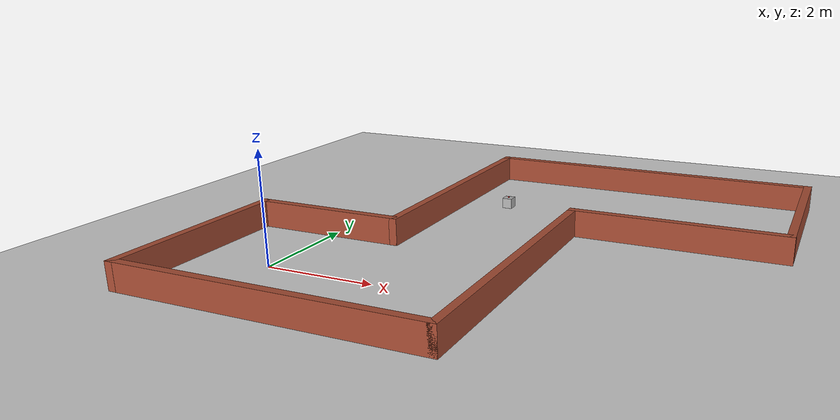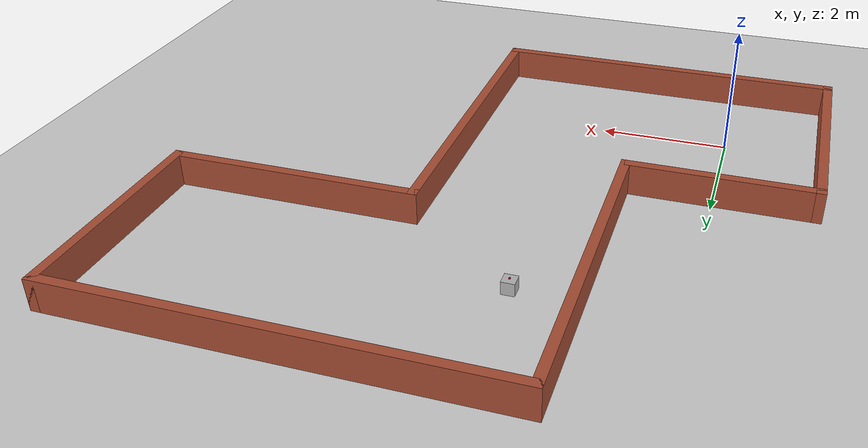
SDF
<sdf version="1.10">
 <world name="default">
  <gravity>0 0 -9.8000000000000007</gravity>
  <magnetic_field>6.0000000000000002e-06 2.3e-05 -4.1999999999999998e-05</magnetic_field>
  <atmosphere type="adiabatic"/>
  <plugin name="gz::sim::systems::Physics" filename="gz-sim-physics-system"/>
  <plugin name="gz::sim::systems::Sensors" filename="gz-sim-sensors-system"/>
  <plugin name="gz::sim::systems::UserCommands" filename="gz-sim-user-commands-system"/>
  <plugin name="gz::sim::systems::SceneBroadcaster" filename="gz-sim-scene-broadcaster-system"/>
  <plugin name="gz::sim::systems::Contact" filename="gz-sim-contact-system"/>
  <plugin name="gz::sim::systems::Imu" filename="gz-sim-imu-system"/>
  <physics type="ode">
   <max_step_size>0.001</max_step_size>
   <real_time_factor>1</real_time_factor>
   <real_time_update_rate>200</real_time_update_rate>
  </physics>
  <scene>
   <ambient>0.400000006 0.400000006 0.400000006 1</ambient>
   <background>0.699999988 0.699999988 0.699999988 1</background>
   <shadows>true</shadows>
  </scene>
  <spherical_coordinates>
   <surface_model>EARTH_WGS84</surface_model>
   <latitude_deg>0</latitude_deg>
   <longitude_deg>0</longitude_deg>
   <elevation>0</elevation>
   <heading_deg>0</heading_deg>
  </spherical_coordinates>
  <model name="ground_plane">
   <static>true</static>
   <link name="link">
    <collision name="collision">
     <geometry><plane><normal>0 0 1</normal><size>100 100</size></plane></geometry>
     <surface>
      <contact><collide_bitmask>65535</collide_bitmask></contact>
      <friction><ode><mu>100</mu><mu2>50</mu2></ode></friction>
     </surface>
    </collision>
    <visual name="visual">
     <cast_shadows>false</cast_shadows>
     <geometry><plane><normal>0 0 1</normal><size>100 100</size></plane></geometry>
     <material>
      <script><uri>file://media/materials/scripts/gazebo.material</uri><name>Gazebo/Grey</name></script>
     </material>
    </visual>
    <inertial>
     <mass>1</mass>
     <inertia><ixx>1</ixx><ixy>0</ixy><ixz>0</ixz><iyy>1</iyy><iyz>0</iyz><izz>1</izz></inertia>
    </inertial>
   </link>
  </model>
  <model name="slam_simple">
   <pose>3.2073299999999998 2.5927099999999998 0 0 0 0</pose>
   <link name="Wall_10">
    <collision name="Wall_10_Collision">
     <geometry><box><size>3.5 0.14999999999999999 0.5</size></box></geometry>
     <pose>0 0 0.25 0 0 0</pose>
    </collision>
    <visual name="Wall_10_Visual">
     <pose>0 0 0.25 0 0 0</pose>
     <geometry><box><size>3.5 0.14999999999999999 0.5</size></box></geometry>
     <material>
      <script><uri>file://media/materials/scripts/gazebo.material</uri><name>Gazebo/Bricks</name></script>
      <ambient>1 1 1 1</ambient>
     </material>
     <meta><layer>0</layer></meta>
    </visual>
    <pose>4.7249999999999996 2.6749999999999998 0 0 0 -1.5708</pose>
    <inertial>
     <mass>1</mass>
     <inertia><ixx>1</ixx><ixy>0</ixy><ixz>0</ixz><iyy>1</iyy><iyz>0</iyz><izz>1</izz></inertia>
    </inertial>
   </link>
   <link name="Wall_11">
    <collision name="Wall_11_Collision">
     <geometry><box><size>4 0.14999999999999999 0.5</size></box></geometry>
     <pose>0 0 0.25 0 0 0</pose>
    </collision>
    <visual name="Wall_11_Visual">
     <pose>0 0 0.25 0 0 0</pose>
     <geometry><box><size>4 0.14999999999999999 0.5</size></box></geometry>
     <material>
      <script><uri>file://media/materials/scripts/gazebo.material</uri><name>Gazebo/Bricks</name></script>
      <ambient>1 1 1 1</ambient>
     </material>
     <meta><layer>0</layer></meta>
    </visual>
    <pose>2.8000000000000012 0.999999999999996 0 0 0 3.1415900000000012</pose>
    <inertial>
     <mass>1</mass>
     <inertia><ixx>1</ixx><ixy>0</ixy><ixz>0</ixz><iyy>1</iyy><iyz>0</iyz><izz>1</izz></inertia>
    </inertial>
   </link>
   <link name="Wall_3">
    <collision name="Wall_3_Collision">
     <geometry><box><size>3.75 0.14999999999999999 0.5</size></box></geometry>
     <pose>0 0 0.25 0 0 0</pose>
    </collision>
    <visual name="Wall_3_Visual">
     <pose>0 0 0.25 0 0 0</pose>
     <geometry><box><size>3.75 0.14999999999999999 0.5</size></box></geometry>
     <material>
      <script><uri>file://media/materials/scripts/gazebo.material</uri><name>Gazebo/Bricks</name></script>
      <ambient>1 1 1 1</ambient>
     </material>
     <meta><layer>0</layer></meta>
    </visual>
    <pose>-4.7249999999999934 -2.5500000000000149 0 0 0 -1.5707999999999993</pose>
    <inertial>
     <mass>1</mass>
     <inertia><ixx>1</ixx><ixy>0</ixy><ixz>0</ixz><iyy>1</iyy><iyz>0</iyz><izz>1</izz></inertia>
    </inertial>
   </link>
   <link name="Wall_4">
    <collision name="Wall_4_Collision">
     <geometry><box><size>5.75 0.14999999999999999 0.5</size></box></geometry>
     <pose>0 0 0.25 0 0 0</pose>
    </collision>
    <visual name="Wall_4_Visual">
     <pose>0 0 0.25 0 0 0</pose>
     <geometry><box><size>5.75 0.14999999999999999 0.5</size></box></geometry>
     <material>
      <script><uri>file://media/materials/scripts/gazebo.material</uri><name>Gazebo/Bricks</name></script>
      <ambient>1 1 1 1</ambient>
     </material>
     <meta><layer>0</layer></meta>
    </visual>
    <pose>-1.9249999999999909 -4.3500000000000103 0 0 0 1.4432899320127037e-15</pose>
    <inertial>
     <mass>1</mass>
     <inertia><ixx>1</ixx><ixy>0</ixy><ixz>0</ixz><iyy>1</iyy><iyz>0</iyz><izz>1</izz></inertia>
    </inertial>
   </link>
   <link name="Wall_5">
    <collision name="Wall_5_Collision">
     <geometry><box><size>5.5 0.14999999999999999 0.5</size></box></geometry>
     <pose>0 0 0.25 0 0 0</pose>
    </collision>
    <visual name="Wall_5_Visual">
     <pose>0 0 0.25 0 0 0</pose>
     <geometry><box><size>5.5 0.14999999999999999 0.5</size></box></geometry>
     <material>
      <script><uri>file://media/materials/scripts/gazebo.material</uri><name>Gazebo/Bricks</name></script>
      <ambient>1 1 1 1</ambient>
     </material>
     <meta><layer>0</layer></meta>
    </visual>
    <pose>0.87500000000000577 -1.6750000000000074 0 0 0 1.5708000000000026</pose>
    <inertial>
     <mass>1</mass>
     <inertia><ixx>1</ixx><ixy>0</ixy><ixz>0</ixz><iyy>1</iyy><iyz>0</iyz><izz>1</izz></inertia>
    </inertial>
   </link>
   <link name="Wall_7">
    <collision name="Wall_7_Collision">
     <geometry><box><size>3 0.14999999999999999 0.5</size></box></geometry>
     <pose>0 0 0.25 0 0 0</pose>
    </collision>
    <visual name="Wall_7_Visual">
     <pose>0 0 0.25 0 0 0</pose>
     <geometry><box><size>3 0.14999999999999999 0.5</size></box></geometry>
     <material>
      <script><uri>file://media/materials/scripts/gazebo.material</uri><name>Gazebo/Bricks</name></script>
      <ambient>1 1 1 1</ambient>
     </material>
     <meta><layer>0</layer></meta>
    </visual>
    <pose>-3.2999999999999958 -0.75000000000001377 0 0 0 1.4432899320127037e-15</pose>
    <inertial>
     <mass>1</mass>
     <inertia><ixx>1</ixx><ixy>0</ixy><ixz>0</ixz><iyy>1</iyy><iyz>0</iyz><izz>1</izz></inertia>
    </inertial>
   </link>
   <link name="Wall_8">
    <collision name="Wall_8_Collision">
     <geometry><box><size>5.25 0.14999999999999999 0.5</size></box></geometry>
     <pose>0 0 0.25 0 0 0</pose>
    </collision>
    <visual name="Wall_8_Visual">
     <pose>0 0 0.25 0 0 0</pose>
     <geometry><box><size>5.25 0.14999999999999999 0.5</size></box></geometry>
     <material>
      <script><uri>file://media/materials/scripts/gazebo.material</uri><name>Gazebo/Bricks</name></script>
      <ambient>1 1 1 1</ambient>
     </material>
     <meta><layer>0</layer></meta>
    </visual>
    <pose>-1.875 1.7999999999999896 0 0 0 1.5708000000000026</pose>
    <inertial>
     <mass>1</mass>
     <inertia><ixx>1</ixx><ixy>0</ixy><ixz>0</ixz><iyy>1</iyy><iyz>0</iyz><izz>1</izz></inertia>
    </inertial>
   </link>
   <link name="Wall_9">
    <collision name="Wall_9_Collision">
     <geometry><box><size>6.75 0.14999999999999999 0.5</size></box></geometry>
     <pose>0 0 0.25 0 0 0</pose>
    </collision>
    <visual name="Wall_9_Visual">
     <pose>0 0 0.25 0 0 0</pose>
     <geometry><box><size>6.75 0.14999999999999999 0.5</size></box></geometry>
     <material>
      <script><uri>file://media/materials/scripts/gazebo.material</uri><name>Gazebo/Bricks</name></script>
      <ambient>1 1 1 1</ambient>
     </material>
     <meta><layer>0</layer></meta>
    </visual>
    <pose>1.4249999999999967 4.3499999999999925 0 0 0 1.4432899320127037e-15</pose>
    <inertial>
     <mass>1</mass>
     <inertia><ixx>1</ixx><ixy>0</ixy><ixz>0</ixz><iyy>1</iyy><iyz>0</iyz><izz>1</izz></inertia>
    </inertial>
   </link>
   <static>true</static>
  </model>
  <model name="cylinder">
   <pose>2.2766001224517822 4.806610107421875 0.1 0 0 0</pose>
   <link name="cube20_link">
    <inertial>
     <mass>1</mass>
     <inertia>
      <ixx>66.666666666666671</ixx>
      <ixy>0</ixy>
      <ixz>0</ixz>
      <iyy>66.666666666666671</iyy>
      <iyz>0</iyz>
      <izz>66.666666666666671</izz>
     </inertia>
    </inertial>
    <collision name="cube20_collision"><geometry><box><size>0.2 0.2 0.2</size></box></geometry></collision>
    <visual name="cube20_visual">
     <geometry><box><size>0.2 0.2 0.2</size></box></geometry>
     <material>
      <ambient>0.300000012 0.300000012 0.300000012 1</ambient>
      <diffuse>0.699999988 0.699999988 0.699999988 1</diffuse>
      <specular>1 1 1 1</specular>
     </material>
     <plugin name="gz::sim::systems::Label" filename="gz-sim-label-system"><label>10</label></plugin>
    </visual>
   </link>
   <static>false</static>
  </model>
  <model name="red_cube">
   <pose>2.2766001224517822 4.806610107421875 0.21 0 0 0</pose>
   <link name="link">
    <inertial>
     <mass>0.01</mass>
     <inertia>
      <ixx>6.6666666666666675e-07</ixx>
      <ixy>0</ixy>
      <ixz>0</ixz>
      <iyy>6.6666666666666675e-07</iyy>
      <iyz>0</iyz>
      <izz>6.6666666666666675e-07</izz>
     </inertia>
    </inertial>
    <collision name="collision"><geometry><box><size>0.02 0.02 0.02</size></box></geometry></collision>
    <visual name="visual">
     <geometry><box><size>0.02 0.02 0.02</size></box></geometry>
     <material><ambient>1 0 0 1</ambient><diffuse>1 0 0 1</diffuse><specular>0.2 0.2 0.2 1</specular></material>
    </visual>
   </link>
   <static>false</static>
  </model>
  <light name="sun" type="directional">
   <pose>0 0 10 0 0 0</pose>
   <intensity>1</intensity>
   <direction>-0.5 0.10000000000000001 -0.90000000000000002</direction>
   <diffuse>0.800000012 0.800000012 0.800000012 1</diffuse>
   <specular>0.200000003 0.200000003 0.200000003 1</specular>
   <attenuation>
    <range>1000</range>
    <linear>0.01</linear>
    <constant>0.90000000000000002</constant>
    <quadratic>0.001</quadratic>
   </attenuation>
   <spot><inner_angle>0</inner_angle><outer_angle>0</outer_angle><falloff>0</falloff></spot>
  </light>
 </world>
</sdf>
